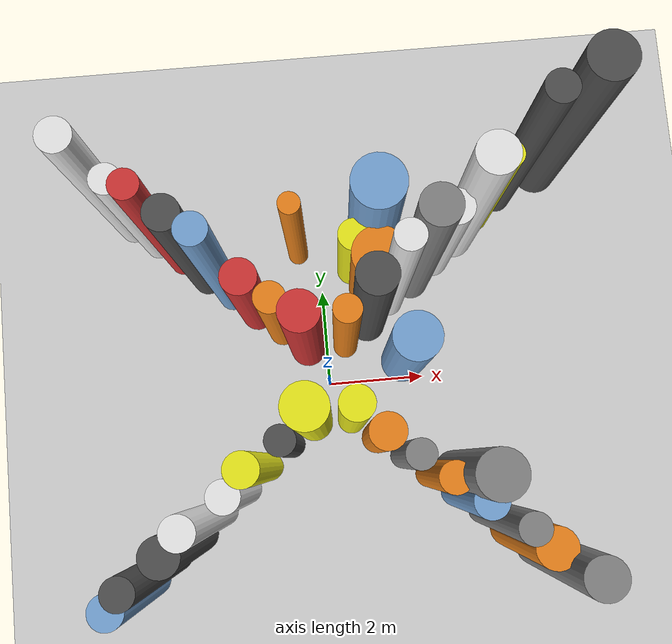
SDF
<?xml version='1.0'?>
<sdf version='1.6'>
  <world name='routeA_rl_v1__dense_recovery__rl_train__bottleneck_corridor__000027'>
    <!-- Sun light -->
    <light name='sun' type='directional'>
      <cast_shadows>1</cast_shadows>
      <pose>0 0 10 0 0 0</pose>
      <diffuse>0.8 0.8 0.8 1</diffuse>
      <specular>0.2 0.2 0.2 1</specular>
      <attenuation>
        <range>1000</range>
        <constant>0.9</constant>
        <linear>0.01</linear>
        <quadratic>0.001</quadratic>
      </attenuation>
      <direction>-0.5 0.1 -0.9</direction>
    </light>

    <!-- Ground plane -->
    <model name='ground_plane'>
      <static>1</static>
      <link name='link'>
        <collision name='collision'>
          <geometry>
            <plane>
              <normal>0 0 1</normal>
              <size>100 100</size>
            </plane>
          </geometry>
          <surface>
            <contact>
              <collide_bitmask>65535</collide_bitmask>
              <ode/>
            </contact>
            <friction>
              <ode>
                <mu>100</mu>
                <mu2>50</mu2>
              </ode>
              <torsional><ode/></torsional>
            </friction>
            <bounce/>
          </surface>
          <max_contacts>10</max_contacts>
        </collision>
        <visual name='visual'>
          <cast_shadows>0</cast_shadows>
          <geometry>
            <plane>
              <normal>0 0 1</normal>
              <size>100 100</size>
            </plane>
          </geometry>
          <material>
            <script>
              <uri>file://media/materials/scripts/gazebo.material</uri>
              <n>Gazebo/Grey</n>
            </script>
          </material>
        </visual>
      </link>
    </model>

    <!-- Environment -->
    <magnetic_field>6e-06 2.3e-05 -4.2e-05</magnetic_field>
    <atmosphere type='adiabatic'/>
    <physics name='default_physics' default='0' type='ode'>
      <gravity>0 0 -9.8</gravity>
      <max_step_size>0.004</max_step_size>
      <real_time_factor>1</real_time_factor>
      <real_time_update_rate>250</real_time_update_rate>
    </physics>
    <scene>
      <ambient>0.4 0.4 0.4 1</ambient>
      <background>0.7 0.7 0.7 1</background>
      <shadows>1</shadows>
    </scene>
    <wind/>
    <spherical_coordinates>
      <surface_model>EARTH_WGS84</surface_model>
      <latitude_deg>0</latitude_deg>
      <longitude_deg>0</longitude_deg>
      <elevation>0</elevation>
      <heading_deg>0</heading_deg>
    </spherical_coordinates>

    <!-- ============ OBSTACLES (40) ============ -->
    <model name='funnel_l_0'>
      <static>1</static>
      <link name='link'>
        <visual name='visual'>
          <geometry>
            <cylinder>
              <radius>0.3204</radius>
              <length>4.0861</length>
            </cylinder>
          </geometry>
          <material>
            <script>
              <n>Gazebo/Blue</n>
              <uri>file://media/materials/scripts/gazebo.material</uri>
            </script>
            <ambient>0.447 0.624 0.812 1</ambient>
          </material>
        </visual>
        <collision name='collision'>
          <geometry>
            <cylinder>
              <radius>0.3204</radius>
              <length>4.0861</length>
            </cylinder>
          </geometry>
          <max_contacts>10</max_contacts>
          <surface>
            <contact><ode/></contact>
            <bounce/>
            <friction>
              <ode><mu>1</mu><mu2>1</mu2></ode>
              <torsional><ode/></torsional>
            </friction>
          </surface>
        </collision>
      </link>
      <pose>-4.0000 -3.8000 2.0430 0 0 0.0000</pose>
    </model>

    <model name='funnel_r_0'>
      <static>1</static>
      <link name='link'>
        <visual name='visual'>
          <geometry>
            <cylinder>
              <radius>0.3099</radius>
              <length>5.6753</length>
            </cylinder>
          </geometry>
          <material>
            <script>
              <n>Gazebo/White</n>
              <uri>file://media/materials/scripts/gazebo.material</uri>
            </script>
            <ambient>0.9 0.9 0.9 1</ambient>
          </material>
        </visual>
        <collision name='collision'>
          <geometry>
            <cylinder>
              <radius>0.3099</radius>
              <length>5.6753</length>
            </cylinder>
          </geometry>
          <max_contacts>10</max_contacts>
          <surface>
            <contact><ode/></contact>
            <bounce/>
            <friction>
              <ode><mu>1</mu><mu2>1</mu2></ode>
              <torsional><ode/></torsional>
            </friction>
          </surface>
        </collision>
      </link>
      <pose>-4.0000 3.8000 2.8376 0 0 0.0000</pose>
    </model>

    <model name='funnel_l_1'>
      <static>1</static>
      <link name='link'>
        <visual name='visual'>
          <geometry>
            <cylinder>
              <radius>0.2822</radius>
              <length>5.2807</length>
            </cylinder>
          </geometry>
          <material>
            <script>
              <n>Gazebo/DarkGrey</n>
              <uri>file://media/materials/scripts/gazebo.material</uri>
            </script>
            <ambient>0.3 0.3 0.3 1</ambient>
          </material>
        </visual>
        <collision name='collision'>
          <geometry>
            <cylinder>
              <radius>0.2822</radius>
              <length>5.2807</length>
            </cylinder>
          </geometry>
          <max_contacts>10</max_contacts>
          <surface>
            <contact><ode/></contact>
            <bounce/>
            <friction>
              <ode><mu>1</mu><mu2>1</mu2></ode>
              <torsional><ode/></torsional>
            </friction>
          </surface>
        </collision>
      </link>
      <pose>-3.4857 -3.3714 2.6404 0 0 0.0000</pose>
    </model>

    <model name='funnel_r_1'>
      <static>1</static>
      <link name='link'>
        <visual name='visual'>
          <geometry>
            <cylinder>
              <radius>0.2833</radius>
              <length>4.6592</length>
            </cylinder>
          </geometry>
          <material>
            <script>
              <n>Gazebo/White</n>
              <uri>file://media/materials/scripts/gazebo.material</uri>
            </script>
            <ambient>0.9 0.9 0.9 1</ambient>
          </material>
        </visual>
        <collision name='collision'>
          <geometry>
            <cylinder>
              <radius>0.2833</radius>
              <length>4.6592</length>
            </cylinder>
          </geometry>
          <max_contacts>10</max_contacts>
          <surface>
            <contact><ode/></contact>
            <bounce/>
            <friction>
              <ode><mu>1</mu><mu2>1</mu2></ode>
              <torsional><ode/></torsional>
            </friction>
          </surface>
        </collision>
      </link>
      <pose>-3.4857 3.3714 2.3296 0 0 0.0000</pose>
    </model>

    <model name='funnel_l_2'>
      <static>1</static>
      <link name='link'>
        <visual name='visual'>
          <geometry>
            <cylinder>
              <radius>0.3569</radius>
              <length>4.5745</length>
            </cylinder>
          </geometry>
          <material>
            <script>
              <n>Gazebo/DarkGrey</n>
              <uri>file://media/materials/scripts/gazebo.material</uri>
            </script>
            <ambient>0.3 0.3 0.3 1</ambient>
          </material>
        </visual>
        <collision name='collision'>
          <geometry>
            <cylinder>
              <radius>0.3569</radius>
              <length>4.5745</length>
            </cylinder>
          </geometry>
          <max_contacts>10</max_contacts>
          <surface>
            <contact><ode/></contact>
            <bounce/>
            <friction>
              <ode><mu>1</mu><mu2>1</mu2></ode>
              <torsional><ode/></torsional>
            </friction>
          </surface>
        </collision>
      </link>
      <pose>-2.9714 -2.9429 2.2873 0 0 0.0000</pose>
    </model>

    <model name='funnel_r_2'>
      <static>1</static>
      <link name='link'>
        <visual name='visual'>
          <geometry>
            <cylinder>
              <radius>0.2650</radius>
              <length>5.5739</length>
            </cylinder>
          </geometry>
          <material>
            <script>
              <n>Gazebo/Red</n>
              <uri>file://media/materials/scripts/gazebo.material</uri>
            </script>
            <ambient>0.8 0.2 0.2 1</ambient>
          </material>
        </visual>
        <collision name='collision'>
          <geometry>
            <cylinder>
              <radius>0.2650</radius>
              <length>5.5739</length>
            </cylinder>
          </geometry>
          <max_contacts>10</max_contacts>
          <surface>
            <contact><ode/></contact>
            <bounce/>
            <friction>
              <ode><mu>1</mu><mu2>1</mu2></ode>
              <torsional><ode/></torsional>
            </friction>
          </surface>
        </collision>
      </link>
      <pose>-2.9714 2.9429 2.7869 0 0 0.0000</pose>
    </model>

    <model name='funnel_l_3'>
      <static>1</static>
      <link name='link'>
        <visual name='visual'>
          <geometry>
            <cylinder>
              <radius>0.2906</radius>
              <length>5.6477</length>
            </cylinder>
          </geometry>
          <material>
            <script>
              <n>Gazebo/White</n>
              <uri>file://media/materials/scripts/gazebo.material</uri>
            </script>
            <ambient>0.9 0.9 0.9 1</ambient>
          </material>
        </visual>
        <collision name='collision'>
          <geometry>
            <cylinder>
              <radius>0.2906</radius>
              <length>5.6477</length>
            </cylinder>
          </geometry>
          <max_contacts>10</max_contacts>
          <surface>
            <contact><ode/></contact>
            <bounce/>
            <friction>
              <ode><mu>1</mu><mu2>1</mu2></ode>
              <torsional><ode/></torsional>
            </friction>
          </surface>
        </collision>
      </link>
      <pose>-2.4571 -2.5143 2.8238 0 0 0.0000</pose>
    </model>

    <model name='funnel_r_3'>
      <static>1</static>
      <link name='link'>
        <visual name='visual'>
          <geometry>
            <cylinder>
              <radius>0.3196</radius>
              <length>5.3100</length>
            </cylinder>
          </geometry>
          <material>
            <script>
              <n>Gazebo/DarkGrey</n>
              <uri>file://media/materials/scripts/gazebo.material</uri>
            </script>
            <ambient>0.3 0.3 0.3 1</ambient>
          </material>
        </visual>
        <collision name='collision'>
          <geometry>
            <cylinder>
              <radius>0.3196</radius>
              <length>5.3100</length>
            </cylinder>
          </geometry>
          <max_contacts>10</max_contacts>
          <surface>
            <contact><ode/></contact>
            <bounce/>
            <friction>
              <ode><mu>1</mu><mu2>1</mu2></ode>
              <torsional><ode/></torsional>
            </friction>
          </surface>
        </collision>
      </link>
      <pose>-2.4571 2.5143 2.6550 0 0 0.0000</pose>
    </model>

    <model name='funnel_l_4'>
      <static>1</static>
      <link name='link'>
        <visual name='visual'>
          <geometry>
            <cylinder>
              <radius>0.3060</radius>
              <length>4.0972</length>
            </cylinder>
          </geometry>
          <material>
            <script>
              <n>Gazebo/White</n>
              <uri>file://media/materials/scripts/gazebo.material</uri>
            </script>
            <ambient>0.9 0.9 0.9 1</ambient>
          </material>
        </visual>
        <collision name='collision'>
          <geometry>
            <cylinder>
              <radius>0.3060</radius>
              <length>4.0972</length>
            </cylinder>
          </geometry>
          <max_contacts>10</max_contacts>
          <surface>
            <contact><ode/></contact>
            <bounce/>
            <friction>
              <ode><mu>1</mu><mu2>1</mu2></ode>
              <torsional><ode/></torsional>
            </friction>
          </surface>
        </collision>
      </link>
      <pose>-1.9429 -2.0857 2.0486 0 0 0.0000</pose>
    </model>

    <model name='funnel_r_4'>
      <static>1</static>
      <link name='link'>
        <visual name='visual'>
          <geometry>
            <cylinder>
              <radius>0.2856</radius>
              <length>5.7503</length>
            </cylinder>
          </geometry>
          <material>
            <script>
              <n>Gazebo/Blue</n>
              <uri>file://media/materials/scripts/gazebo.material</uri>
            </script>
            <ambient>0.447 0.624 0.812 1</ambient>
          </material>
        </visual>
        <collision name='collision'>
          <geometry>
            <cylinder>
              <radius>0.2856</radius>
              <length>5.7503</length>
            </cylinder>
          </geometry>
          <max_contacts>10</max_contacts>
          <surface>
            <contact><ode/></contact>
            <bounce/>
            <friction>
              <ode><mu>1</mu><mu2>1</mu2></ode>
              <torsional><ode/></torsional>
            </friction>
          </surface>
        </collision>
      </link>
      <pose>-1.9429 2.0857 2.8752 0 0 0.0000</pose>
    </model>

    <model name='funnel_l_5'>
      <static>1</static>
      <link name='link'>
        <visual name='visual'>
          <geometry>
            <cylinder>
              <radius>0.2900</radius>
              <length>5.7432</length>
            </cylinder>
          </geometry>
          <material>
            <script>
              <n>Gazebo/Yellow</n>
              <uri>file://media/materials/scripts/gazebo.material</uri>
            </script>
            <ambient>0.9 0.9 0.1 1</ambient>
          </material>
        </visual>
        <collision name='collision'>
          <geometry>
            <cylinder>
              <radius>0.2900</radius>
              <length>5.7432</length>
            </cylinder>
          </geometry>
          <max_contacts>10</max_contacts>
          <surface>
            <contact><ode/></contact>
            <bounce/>
            <friction>
              <ode><mu>1</mu><mu2>1</mu2></ode>
              <torsional><ode/></torsional>
            </friction>
          </surface>
        </collision>
      </link>
      <pose>-1.4286 -1.6571 2.8716 0 0 0.0000</pose>
    </model>

    <model name='funnel_r_5'>
      <static>1</static>
      <link name='link'>
        <visual name='visual'>
          <geometry>
            <cylinder>
              <radius>0.3392</radius>
              <length>4.0103</length>
            </cylinder>
          </geometry>
          <material>
            <script>
              <n>Gazebo/Red</n>
              <uri>file://media/materials/scripts/gazebo.material</uri>
            </script>
            <ambient>0.8 0.2 0.2 1</ambient>
          </material>
        </visual>
        <collision name='collision'>
          <geometry>
            <cylinder>
              <radius>0.3392</radius>
              <length>4.0103</length>
            </cylinder>
          </geometry>
          <max_contacts>10</max_contacts>
          <surface>
            <contact><ode/></contact>
            <bounce/>
            <friction>
              <ode><mu>1</mu><mu2>1</mu2></ode>
              <torsional><ode/></torsional>
            </friction>
          </surface>
        </collision>
      </link>
      <pose>-1.4286 1.6571 2.0051 0 0 0.0000</pose>
    </model>

    <model name='funnel_l_6'>
      <static>1</static>
      <link name='link'>
        <visual name='visual'>
          <geometry>
            <cylinder>
              <radius>0.2799</radius>
              <length>4.1601</length>
            </cylinder>
          </geometry>
          <material>
            <script>
              <n>Gazebo/DarkGrey</n>
              <uri>file://media/materials/scripts/gazebo.material</uri>
            </script>
            <ambient>0.3 0.3 0.3 1</ambient>
          </material>
        </visual>
        <collision name='collision'>
          <geometry>
            <cylinder>
              <radius>0.2799</radius>
              <length>4.1601</length>
            </cylinder>
          </geometry>
          <max_contacts>10</max_contacts>
          <surface>
            <contact><ode/></contact>
            <bounce/>
            <friction>
              <ode><mu>1</mu><mu2>1</mu2></ode>
              <torsional><ode/></torsional>
            </friction>
          </surface>
        </collision>
      </link>
      <pose>-0.9143 -1.2286 2.0800 0 0 0.0000</pose>
    </model>

    <model name='funnel_r_6'>
      <static>1</static>
      <link name='link'>
        <visual name='visual'>
          <geometry>
            <cylinder>
              <radius>0.2924</radius>
              <length>4.1051</length>
            </cylinder>
          </geometry>
          <material>
            <script>
              <n>Gazebo/Orange</n>
              <uri>file://media/materials/scripts/gazebo.material</uri>
            </script>
            <ambient>0.9 0.5 0.1 1</ambient>
          </material>
        </visual>
        <collision name='collision'>
          <geometry>
            <cylinder>
              <radius>0.2924</radius>
              <length>4.1051</length>
            </cylinder>
          </geometry>
          <max_contacts>10</max_contacts>
          <surface>
            <contact><ode/></contact>
            <bounce/>
            <friction>
              <ode><mu>1</mu><mu2>1</mu2></ode>
              <torsional><ode/></torsional>
            </friction>
          </surface>
        </collision>
      </link>
      <pose>-0.9143 1.2286 2.0525 0 0 0.0000</pose>
    </model>

    <model name='funnel_l_7'>
      <static>1</static>
      <link name='link'>
        <visual name='visual'>
          <geometry>
            <cylinder>
              <radius>0.3892</radius>
              <length>5.8655</length>
            </cylinder>
          </geometry>
          <material>
            <script>
              <n>Gazebo/Yellow</n>
              <uri>file://media/materials/scripts/gazebo.material</uri>
            </script>
            <ambient>0.9 0.9 0.1 1</ambient>
          </material>
        </visual>
        <collision name='collision'>
          <geometry>
            <cylinder>
              <radius>0.3892</radius>
              <length>5.8655</length>
            </cylinder>
          </geometry>
          <max_contacts>10</max_contacts>
          <surface>
            <contact><ode/></contact>
            <bounce/>
            <friction>
              <ode><mu>1</mu><mu2>1</mu2></ode>
              <torsional><ode/></torsional>
            </friction>
          </surface>
        </collision>
      </link>
      <pose>-0.4000 -0.8000 2.9327 0 0 0.0000</pose>
    </model>

    <model name='funnel_r_7'>
      <static>1</static>
      <link name='link'>
        <visual name='visual'>
          <geometry>
            <cylinder>
              <radius>0.3654</radius>
              <length>4.9787</length>
            </cylinder>
          </geometry>
          <material>
            <script>
              <n>Gazebo/Red</n>
              <uri>file://media/materials/scripts/gazebo.material</uri>
            </script>
            <ambient>0.8 0.2 0.2 1</ambient>
          </material>
        </visual>
        <collision name='collision'>
          <geometry>
            <cylinder>
              <radius>0.3654</radius>
              <length>4.9787</length>
            </cylinder>
          </geometry>
          <max_contacts>10</max_contacts>
          <surface>
            <contact><ode/></contact>
            <bounce/>
            <friction>
              <ode><mu>1</mu><mu2>1</mu2></ode>
              <torsional><ode/></torsional>
            </friction>
          </surface>
        </collision>
      </link>
      <pose>-0.4000 0.8000 2.4894 0 0 0.0000</pose>
    </model>

    <model name='funnel_out_l_0'>
      <static>1</static>
      <link name='link'>
        <visual name='visual'>
          <geometry>
            <cylinder>
              <radius>0.2956</radius>
              <length>5.5910</length>
            </cylinder>
          </geometry>
          <material>
            <script>
              <n>Gazebo/Yellow</n>
              <uri>file://media/materials/scripts/gazebo.material</uri>
            </script>
            <ambient>0.9 0.9 0.1 1</ambient>
          </material>
        </visual>
        <collision name='collision'>
          <geometry>
            <cylinder>
              <radius>0.2956</radius>
              <length>5.5910</length>
            </cylinder>
          </geometry>
          <max_contacts>10</max_contacts>
          <surface>
            <contact><ode/></contact>
            <bounce/>
            <friction>
              <ode><mu>1</mu><mu2>1</mu2></ode>
              <torsional><ode/></torsional>
            </friction>
          </surface>
        </collision>
      </link>
      <pose>0.4000 -0.8000 2.7955 0 0 0.0000</pose>
    </model>

    <model name='funnel_out_r_0'>
      <static>1</static>
      <link name='link'>
        <visual name='visual'>
          <geometry>
            <cylinder>
              <radius>0.2535</radius>
              <length>4.8117</length>
            </cylinder>
          </geometry>
          <material>
            <script>
              <n>Gazebo/Orange</n>
              <uri>file://media/materials/scripts/gazebo.material</uri>
            </script>
            <ambient>0.9 0.5 0.1 1</ambient>
          </material>
        </visual>
        <collision name='collision'>
          <geometry>
            <cylinder>
              <radius>0.2535</radius>
              <length>4.8117</length>
            </cylinder>
          </geometry>
          <max_contacts>10</max_contacts>
          <surface>
            <contact><ode/></contact>
            <bounce/>
            <friction>
              <ode><mu>1</mu><mu2>1</mu2></ode>
              <torsional><ode/></torsional>
            </friction>
          </surface>
        </collision>
      </link>
      <pose>0.4000 0.8000 2.4058 0 0 0.0000</pose>
    </model>

    <model name='funnel_out_l_1'>
      <static>1</static>
      <link name='link'>
        <visual name='visual'>
          <geometry>
            <cylinder>
              <radius>0.3353</radius>
              <length>4.1656</length>
            </cylinder>
          </geometry>
          <material>
            <script>
              <n>Gazebo/Orange</n>
              <uri>file://media/materials/scripts/gazebo.material</uri>
            </script>
            <ambient>0.9 0.5 0.1 1</ambient>
          </material>
        </visual>
        <collision name='collision'>
          <geometry>
            <cylinder>
              <radius>0.3353</radius>
              <length>4.1656</length>
            </cylinder>
          </geometry>
          <max_contacts>10</max_contacts>
          <surface>
            <contact><ode/></contact>
            <bounce/>
            <friction>
              <ode><mu>1</mu><mu2>1</mu2></ode>
              <torsional><ode/></torsional>
            </friction>
          </surface>
        </collision>
      </link>
      <pose>0.9143 -1.2286 2.0828 0 0 0.0000</pose>
    </model>

    <model name='funnel_out_r_1'>
      <static>1</static>
      <link name='link'>
        <visual name='visual'>
          <geometry>
            <cylinder>
              <radius>0.3653</radius>
              <length>5.3308</length>
            </cylinder>
          </geometry>
          <material>
            <script>
              <n>Gazebo/DarkGrey</n>
              <uri>file://media/materials/scripts/gazebo.material</uri>
            </script>
            <ambient>0.3 0.3 0.3 1</ambient>
          </material>
        </visual>
        <collision name='collision'>
          <geometry>
            <cylinder>
              <radius>0.3653</radius>
              <length>5.3308</length>
            </cylinder>
          </geometry>
          <max_contacts>10</max_contacts>
          <surface>
            <contact><ode/></contact>
            <bounce/>
            <friction>
              <ode><mu>1</mu><mu2>1</mu2></ode>
              <torsional><ode/></torsional>
            </friction>
          </surface>
        </collision>
      </link>
      <pose>0.9143 1.2286 2.6654 0 0 0.0000</pose>
    </model>

    <model name='funnel_out_l_2'>
      <static>1</static>
      <link name='link'>
        <visual name='visual'>
          <geometry>
            <cylinder>
              <radius>0.2754</radius>
              <length>4.2390</length>
            </cylinder>
          </geometry>
          <material>
            <script>
              <n>Gazebo/Grey</n>
              <uri>file://media/materials/scripts/gazebo.material</uri>
            </script>
            <ambient>0.5 0.5 0.5 1</ambient>
          </material>
        </visual>
        <collision name='collision'>
          <geometry>
            <cylinder>
              <radius>0.2754</radius>
              <length>4.2390</length>
            </cylinder>
          </geometry>
          <max_contacts>10</max_contacts>
          <surface>
            <contact><ode/></contact>
            <bounce/>
            <friction>
              <ode><mu>1</mu><mu2>1</mu2></ode>
              <torsional><ode/></torsional>
            </friction>
          </surface>
        </collision>
      </link>
      <pose>1.4286 -1.6571 2.1195 0 0 0.0000</pose>
    </model>

    <model name='funnel_out_r_2'>
      <static>1</static>
      <link name='link'>
        <visual name='visual'>
          <geometry>
            <cylinder>
              <radius>0.2658</radius>
              <length>5.9444</length>
            </cylinder>
          </geometry>
          <material>
            <script>
              <n>Gazebo/White</n>
              <uri>file://media/materials/scripts/gazebo.material</uri>
            </script>
            <ambient>0.9 0.9 0.9 1</ambient>
          </material>
        </visual>
        <collision name='collision'>
          <geometry>
            <cylinder>
              <radius>0.2658</radius>
              <length>5.9444</length>
            </cylinder>
          </geometry>
          <max_contacts>10</max_contacts>
          <surface>
            <contact><ode/></contact>
            <bounce/>
            <friction>
              <ode><mu>1</mu><mu2>1</mu2></ode>
              <torsional><ode/></torsional>
            </friction>
          </surface>
        </collision>
      </link>
      <pose>1.4286 1.6571 2.9722 0 0 0.0000</pose>
    </model>

    <model name='funnel_out_l_3'>
      <static>1</static>
      <link name='link'>
        <visual name='visual'>
          <geometry>
            <cylinder>
              <radius>0.2891</radius>
              <length>4.4130</length>
            </cylinder>
          </geometry>
          <material>
            <script>
              <n>Gazebo/Orange</n>
              <uri>file://media/materials/scripts/gazebo.material</uri>
            </script>
            <ambient>0.9 0.5 0.1 1</ambient>
          </material>
        </visual>
        <collision name='collision'>
          <geometry>
            <cylinder>
              <radius>0.2891</radius>
              <length>4.4130</length>
            </cylinder>
          </geometry>
          <max_contacts>10</max_contacts>
          <surface>
            <contact><ode/></contact>
            <bounce/>
            <friction>
              <ode><mu>1</mu><mu2>1</mu2></ode>
              <torsional><ode/></torsional>
            </friction>
          </surface>
        </collision>
      </link>
      <pose>1.9429 -2.0857 2.2065 0 0 0.0000</pose>
    </model>

    <model name='funnel_out_r_3'>
      <static>1</static>
      <link name='link'>
        <visual name='visual'>
          <geometry>
            <cylinder>
              <radius>0.3581</radius>
              <length>5.9353</length>
            </cylinder>
          </geometry>
          <material>
            <script>
              <n>Gazebo/Grey</n>
              <uri>file://media/materials/scripts/gazebo.material</uri>
            </script>
            <ambient>0.5 0.5 0.5 1</ambient>
          </material>
        </visual>
        <collision name='collision'>
          <geometry>
            <cylinder>
              <radius>0.3581</radius>
              <length>5.9353</length>
            </cylinder>
          </geometry>
          <max_contacts>10</max_contacts>
          <surface>
            <contact><ode/></contact>
            <bounce/>
            <friction>
              <ode><mu>1</mu><mu2>1</mu2></ode>
              <torsional><ode/></torsional>
            </friction>
          </surface>
        </collision>
      </link>
      <pose>1.9429 2.0857 2.9676 0 0 0.0000</pose>
    </model>

    <model name='funnel_out_l_4'>
      <static>1</static>
      <link name='link'>
        <visual name='visual'>
          <geometry>
            <cylinder>
              <radius>0.3030</radius>
              <length>4.5937</length>
            </cylinder>
          </geometry>
          <material>
            <script>
              <n>Gazebo/Blue</n>
              <uri>file://media/materials/scripts/gazebo.material</uri>
            </script>
            <ambient>0.447 0.624 0.812 1</ambient>
          </material>
        </visual>
        <collision name='collision'>
          <geometry>
            <cylinder>
              <radius>0.3030</radius>
              <length>4.5937</length>
            </cylinder>
          </geometry>
          <max_contacts>10</max_contacts>
          <surface>
            <contact><ode/></contact>
            <bounce/>
            <friction>
              <ode><mu>1</mu><mu2>1</mu2></ode>
              <torsional><ode/></torsional>
            </friction>
          </surface>
        </collision>
      </link>
      <pose>2.4571 -2.5143 2.2969 0 0 0.0000</pose>
    </model>

    <model name='funnel_out_r_4'>
      <static>1</static>
      <link name='link'>
        <visual name='visual'>
          <geometry>
            <cylinder>
              <radius>0.3303</radius>
              <length>4.2188</length>
            </cylinder>
          </geometry>
          <material>
            <script>
              <n>Gazebo/White</n>
              <uri>file://media/materials/scripts/gazebo.material</uri>
            </script>
            <ambient>0.9 0.9 0.9 1</ambient>
          </material>
        </visual>
        <collision name='collision'>
          <geometry>
            <cylinder>
              <radius>0.3303</radius>
              <length>4.2188</length>
            </cylinder>
          </geometry>
          <max_contacts>10</max_contacts>
          <surface>
            <contact><ode/></contact>
            <bounce/>
            <friction>
              <ode><mu>1</mu><mu2>1</mu2></ode>
              <torsional><ode/></torsional>
            </friction>
          </surface>
        </collision>
      </link>
      <pose>2.4571 2.5143 2.1094 0 0 0.0000</pose>
    </model>

    <model name='funnel_out_l_5'>
      <static>1</static>
      <link name='link'>
        <visual name='visual'>
          <geometry>
            <cylinder>
              <radius>0.2726</radius>
              <length>5.2414</length>
            </cylinder>
          </geometry>
          <material>
            <script>
              <n>Gazebo/Grey</n>
              <uri>file://media/materials/scripts/gazebo.material</uri>
            </script>
            <ambient>0.5 0.5 0.5 1</ambient>
          </material>
        </visual>
        <collision name='collision'>
          <geometry>
            <cylinder>
              <radius>0.2726</radius>
              <length>5.2414</length>
            </cylinder>
          </geometry>
          <max_contacts>10</max_contacts>
          <surface>
            <contact><ode/></contact>
            <bounce/>
            <friction>
              <ode><mu>1</mu><mu2>1</mu2></ode>
              <torsional><ode/></torsional>
            </friction>
          </surface>
        </collision>
      </link>
      <pose>2.9714 -2.9429 2.6207 0 0 0.0000</pose>
    </model>

    <model name='funnel_out_r_5'>
      <static>1</static>
      <link name='link'>
        <visual name='visual'>
          <geometry>
            <cylinder>
              <radius>0.3784</radius>
              <length>5.6058</length>
            </cylinder>
          </geometry>
          <material>
            <script>
              <n>Gazebo/White</n>
              <uri>file://media/materials/scripts/gazebo.material</uri>
            </script>
            <ambient>0.9 0.9 0.9 1</ambient>
          </material>
        </visual>
        <collision name='collision'>
          <geometry>
            <cylinder>
              <radius>0.3784</radius>
              <length>5.6058</length>
            </cylinder>
          </geometry>
          <max_contacts>10</max_contacts>
          <surface>
            <contact><ode/></contact>
            <bounce/>
            <friction>
              <ode><mu>1</mu><mu2>1</mu2></ode>
              <torsional><ode/></torsional>
            </friction>
          </surface>
        </collision>
      </link>
      <pose>2.9714 2.9429 2.8029 0 0 0.0000</pose>
    </model>

    <model name='funnel_out_l_6'>
      <static>1</static>
      <link name='link'>
        <visual name='visual'>
          <geometry>
            <cylinder>
              <radius>0.3685</radius>
              <length>4.3388</length>
            </cylinder>
          </geometry>
          <material>
            <script>
              <n>Gazebo/Orange</n>
              <uri>file://media/materials/scripts/gazebo.material</uri>
            </script>
            <ambient>0.9 0.5 0.1 1</ambient>
          </material>
        </visual>
        <collision name='collision'>
          <geometry>
            <cylinder>
              <radius>0.3685</radius>
              <length>4.3388</length>
            </cylinder>
          </geometry>
          <max_contacts>10</max_contacts>
          <surface>
            <contact><ode/></contact>
            <bounce/>
            <friction>
              <ode><mu>1</mu><mu2>1</mu2></ode>
              <torsional><ode/></torsional>
            </friction>
          </surface>
        </collision>
      </link>
      <pose>3.4857 -3.3714 2.1694 0 0 0.0000</pose>
    </model>

    <model name='funnel_out_r_6'>
      <static>1</static>
      <link name='link'>
        <visual name='visual'>
          <geometry>
            <cylinder>
              <radius>0.2543</radius>
              <length>4.2244</length>
            </cylinder>
          </geometry>
          <material>
            <script>
              <n>Gazebo/Yellow</n>
              <uri>file://media/materials/scripts/gazebo.material</uri>
            </script>
            <ambient>0.9 0.9 0.1 1</ambient>
          </material>
        </visual>
        <collision name='collision'>
          <geometry>
            <cylinder>
              <radius>0.2543</radius>
              <length>4.2244</length>
            </cylinder>
          </geometry>
          <max_contacts>10</max_contacts>
          <surface>
            <contact><ode/></contact>
            <bounce/>
            <friction>
              <ode><mu>1</mu><mu2>1</mu2></ode>
              <torsional><ode/></torsional>
            </friction>
          </surface>
        </collision>
      </link>
      <pose>3.4857 3.3714 2.1122 0 0 0.0000</pose>
    </model>

    <model name='funnel_out_l_7'>
      <static>1</static>
      <link name='link'>
        <visual name='visual'>
          <geometry>
            <cylinder>
              <radius>0.3696</radius>
              <length>5.1352</length>
            </cylinder>
          </geometry>
          <material>
            <script>
              <n>Gazebo/Grey</n>
              <uri>file://media/materials/scripts/gazebo.material</uri>
            </script>
            <ambient>0.5 0.5 0.5 1</ambient>
          </material>
        </visual>
        <collision name='collision'>
          <geometry>
            <cylinder>
              <radius>0.3696</radius>
              <length>5.1352</length>
            </cylinder>
          </geometry>
          <max_contacts>10</max_contacts>
          <surface>
            <contact><ode/></contact>
            <bounce/>
            <friction>
              <ode><mu>1</mu><mu2>1</mu2></ode>
              <torsional><ode/></torsional>
            </friction>
          </surface>
        </collision>
      </link>
      <pose>4.0000 -3.8000 2.5676 0 0 0.0000</pose>
    </model>

    <model name='funnel_out_r_7'>
      <static>1</static>
      <link name='link'>
        <visual name='visual'>
          <geometry>
            <cylinder>
              <radius>0.2915</radius>
              <length>5.9498</length>
            </cylinder>
          </geometry>
          <material>
            <script>
              <n>Gazebo/DarkGrey</n>
              <uri>file://media/materials/scripts/gazebo.material</uri>
            </script>
            <ambient>0.3 0.3 0.3 1</ambient>
          </material>
        </visual>
        <collision name='collision'>
          <geometry>
            <cylinder>
              <radius>0.2915</radius>
              <length>5.9498</length>
            </cylinder>
          </geometry>
          <max_contacts>10</max_contacts>
          <surface>
            <contact><ode/></contact>
            <bounce/>
            <friction>
              <ode><mu>1</mu><mu2>1</mu2></ode>
              <torsional><ode/></torsional>
            </friction>
          </surface>
        </collision>
      </link>
      <pose>4.0000 3.8000 2.9749 0 0 0.0000</pose>
    </model>

    <model name='bn_scatter_0'>
      <static>1</static>
      <link name='link'>
        <visual name='visual'>
          <geometry>
            <cylinder>
              <radius>0.4527</radius>
              <length>3.9109</length>
            </cylinder>
          </geometry>
          <material>
            <script>
              <n>Gazebo/Blue</n>
              <uri>file://media/materials/scripts/gazebo.material</uri>
            </script>
            <ambient>0.447 0.624 0.812 1</ambient>
          </material>
        </visual>
        <collision name='collision'>
          <geometry>
            <cylinder>
              <radius>0.4527</radius>
              <length>3.9109</length>
            </cylinder>
          </geometry>
          <max_contacts>10</max_contacts>
          <surface>
            <contact><ode/></contact>
            <bounce/>
            <friction>
              <ode><mu>1</mu><mu2>1</mu2></ode>
              <torsional><ode/></torsional>
            </friction>
          </surface>
        </collision>
      </link>
      <pose>1.5949 0.3701 1.9555 0 0 0.0000</pose>
    </model>

    <model name='bn_scatter_1'>
      <static>1</static>
      <link name='link'>
        <visual name='visual'>
          <geometry>
            <cylinder>
              <radius>0.4388</radius>
              <length>5.7905</length>
            </cylinder>
          </geometry>
          <material>
            <script>
              <n>Gazebo/DarkGrey</n>
              <uri>file://media/materials/scripts/gazebo.material</uri>
            </script>
            <ambient>0.3 0.3 0.3 1</ambient>
          </material>
        </visual>
        <collision name='collision'>
          <geometry>
            <cylinder>
              <radius>0.4388</radius>
              <length>5.7905</length>
            </cylinder>
          </geometry>
          <max_contacts>10</max_contacts>
          <surface>
            <contact><ode/></contact>
            <bounce/>
            <friction>
              <ode><mu>1</mu><mu2>1</mu2></ode>
              <torsional><ode/></torsional>
            </friction>
          </surface>
        </collision>
      </link>
      <pose>4.9058 4.2992 2.8953 0 0 0.0000</pose>
    </model>

    <model name='bn_scatter_2'>
      <static>1</static>
      <link name='link'>
        <visual name='visual'>
          <geometry>
            <cylinder>
              <radius>0.2113</radius>
              <length>3.9590</length>
            </cylinder>
          </geometry>
          <material>
            <script>
              <n>Gazebo/Orange</n>
              <uri>file://media/materials/scripts/gazebo.material</uri>
            </script>
            <ambient>0.9 0.5 0.1 1</ambient>
          </material>
        </visual>
        <collision name='collision'>
          <geometry>
            <cylinder>
              <radius>0.2113</radius>
              <length>3.9590</length>
            </cylinder>
          </geometry>
          <max_contacts>10</max_contacts>
          <surface>
            <contact><ode/></contact>
            <bounce/>
            <friction>
              <ode><mu>1</mu><mu2>1</mu2></ode>
              <torsional><ode/></torsional>
            </friction>
          </surface>
        </collision>
      </link>
      <pose>-0.4497 2.9017 1.9795 0 0 0.0000</pose>
    </model>

    <model name='bn_scatter_3'>
      <static>1</static>
      <link name='link'>
        <visual name='visual'>
          <geometry>
            <cylinder>
              <radius>0.4227</radius>
              <length>5.6434</length>
            </cylinder>
          </geometry>
          <material>
            <script>
              <n>Gazebo/Grey</n>
              <uri>file://media/materials/scripts/gazebo.material</uri>
            </script>
            <ambient>0.5 0.5 0.5 1</ambient>
          </material>
        </visual>
        <collision name='collision'>
          <geometry>
            <cylinder>
              <radius>0.4227</radius>
              <length>5.6434</length>
            </cylinder>
          </geometry>
          <max_contacts>10</max_contacts>
          <surface>
            <contact><ode/></contact>
            <bounce/>
            <friction>
              <ode><mu>1</mu><mu2>1</mu2></ode>
              <torsional><ode/></torsional>
            </friction>
          </surface>
        </collision>
      </link>
      <pose>2.4839 -2.0625 2.8217 0 0 0.0000</pose>
    </model>

    <model name='bn_scatter_4'>
      <static>1</static>
      <link name='link'>
        <visual name='visual'>
          <geometry>
            <cylinder>
              <radius>0.5295</radius>
              <length>3.1904</length>
            </cylinder>
          </geometry>
          <material>
            <script>
              <n>Gazebo/Orange</n>
              <uri>file://media/materials/scripts/gazebo.material</uri>
            </script>
            <ambient>0.9 0.5 0.1 1</ambient>
          </material>
        </visual>
        <collision name='collision'>
          <geometry>
            <cylinder>
              <radius>0.5295</radius>
              <length>3.1904</length>
            </cylinder>
          </geometry>
          <max_contacts>10</max_contacts>
          <surface>
            <contact><ode/></contact>
            <bounce/>
            <friction>
              <ode><mu>1</mu><mu2>1</mu2></ode>
              <torsional><ode/></torsional>
            </friction>
          </surface>
        </collision>
      </link>
      <pose>1.1158 2.0501 1.5952 0 0 0.0000</pose>
    </model>

    <model name='bn_scatter_5'>
      <static>1</static>
      <link name='link'>
        <visual name='visual'>
          <geometry>
            <cylinder>
              <radius>0.3082</radius>
              <length>3.1335</length>
            </cylinder>
          </geometry>
          <material>
            <script>
              <n>Gazebo/Yellow</n>
              <uri>file://media/materials/scripts/gazebo.material</uri>
            </script>
            <ambient>0.9 0.9 0.1 1</ambient>
          </material>
        </visual>
        <collision name='collision'>
          <geometry>
            <cylinder>
              <radius>0.3082</radius>
              <length>3.1335</length>
            </cylinder>
          </geometry>
          <max_contacts>10</max_contacts>
          <surface>
            <contact><ode/></contact>
            <bounce/>
            <friction>
              <ode><mu>1</mu><mu2>1</mu2></ode>
              <torsional><ode/></torsional>
            </friction>
          </surface>
        </collision>
      </link>
      <pose>0.6781 2.4553 1.5667 0 0 0.0000</pose>
    </model>

    <model name='bn_scatter_6'>
      <static>1</static>
      <link name='link'>
        <visual name='visual'>
          <geometry>
            <cylinder>
              <radius>0.2147</radius>
              <length>4.1286</length>
            </cylinder>
          </geometry>
          <material>
            <script>
              <n>Gazebo/DarkGrey</n>
              <uri>file://media/materials/scripts/gazebo.material</uri>
            </script>
            <ambient>0.3 0.3 0.3 1</ambient>
          </material>
        </visual>
        <collision name='collision'>
          <geometry>
            <cylinder>
              <radius>0.2147</radius>
              <length>4.1286</length>
            </cylinder>
          </geometry>
          <max_contacts>10</max_contacts>
          <surface>
            <contact><ode/></contact>
            <bounce/>
            <friction>
              <ode><mu>1</mu><mu2>1</mu2></ode>
              <torsional><ode/></torsional>
            </friction>
          </surface>
        </collision>
      </link>
      <pose>2.8476 3.0293 2.0643 0 0 0.0000</pose>
    </model>

    <model name='bn_scatter_7'>
      <static>1</static>
      <link name='link'>
        <visual name='visual'>
          <geometry>
            <cylinder>
              <radius>0.5099</radius>
              <length>4.4142</length>
            </cylinder>
          </geometry>
          <material>
            <script>
              <n>Gazebo/Blue</n>
              <uri>file://media/materials/scripts/gazebo.material</uri>
            </script>
            <ambient>0.447 0.624 0.812 1</ambient>
          </material>
        </visual>
        <collision name='collision'>
          <geometry>
            <cylinder>
              <radius>0.5099</radius>
              <length>4.4142</length>
            </cylinder>
          </geometry>
          <max_contacts>10</max_contacts>
          <surface>
            <contact><ode/></contact>
            <bounce/>
            <friction>
              <ode><mu>1</mu><mu2>1</mu2></ode>
              <torsional><ode/></torsional>
            </friction>
          </surface>
        </collision>
      </link>
      <pose>1.1396 3.0228 2.2071 0 0 0.0000</pose>
    </model>

    <!-- GUI camera -->
    <gui fullscreen='0'>
      <camera name='user_camera'>
        <pose>-15 0 18 0 0.85 0.15</pose>
        <view_controller>orbit</view_controller>
        <projection_type>perspective</projection_type>
      </camera>
    </gui>
  </world>
</sdf>
